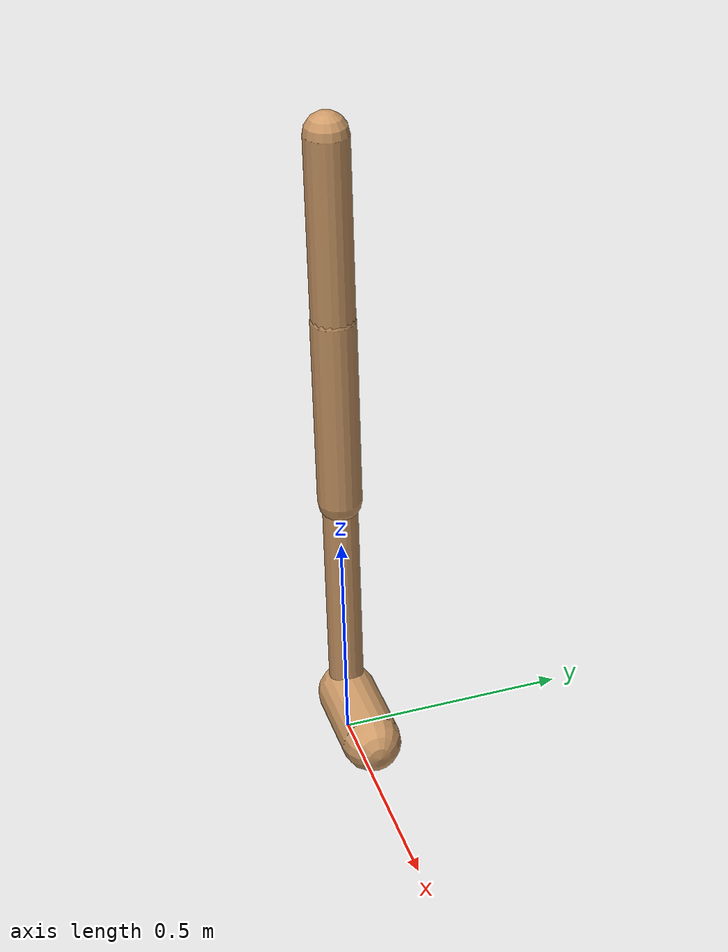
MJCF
<mujoco model="walker2d">
  <compiler angle="degree" coordinate="global" inertiafromgeom="true" />
  <default>
    <joint armature="0.01" damping=".1" limited="true" />
    <geom conaffinity="0" condim="3" contype="1" density="1000" friction="0.8 .1 .1" rgba="0.8 0.6 .4 1" />
  </default>
  <option integrator="RK4" timestep="0.002" />
  <worldbody>

    <body name="torso" pos="0 0 -0.03904116544244765">
      <joint armature="0" axis="1 0 0" damping="0" limited="false" name="ignorex" pos="0 0 0" stiffness="0" type="slide" />
      <joint armature="0" axis="0 0 1" damping="0" limited="false" name="ignorez" pos="0 0 0" ref="1.25" stiffness="0" type="slide" />
      <joint armature="0" axis="0 1 0" damping="0" limited="false" name="ignorey" pos="0 0 0" stiffness="0" type="hinge" />
      <geom fromto="0 0 1.45 0 0 1.05" name="torso_geom" size="0.04614452695073079" type="capsule" />
      <body name="thigh">
        <joint axis="0 -1 0" name="thigh_joint" pos="0 0 1.05" range="-150 0" type="hinge" />
        <geom fromto="0.0 0.0 1.05 0.0 0.0 0.6184931836306331" name="thigh_geom" size="0.04760179907094713" type="capsule" />
        <body name="leg" pos="0.0 0.0 0.018493183630633125">
          <joint axis="0 -1 0" name="leg_joint" pos="0 0 0.6" range="-150 0" type="hinge" />
          <geom fromto="0.0 0.0 0.6 0.0 0.0 0.12054798181181456" name="leg_geom" size="0.0380814392567577" type="capsule" />
          <body name="foot" pos="0.0 0.0 0.020547981811814553">
            <joint axis="0 -1 0" name="foot_joint" pos="0 0 0.1" range="-45 45" type="hinge" />
            <geom fromto="0.0 0.0 0.1 0.18496816291880777 0.0 0.1" name="foot_geom" size="0.06467161920258137" type="capsule" />
          </body>
        </body>
      </body>

      <body name="thigh_left">
        <joint axis="0 -1 0" name="thigh_left_joint" pos="0 0 1.05" range="-150 0" type="hinge" />
        <geom fromto="0.0 0.0 1.05 0.0 0.0 0.6184931836306331" name="thigh_left_geom" rgba=".7 .3 .6 1" size="0.04760179907094713" type="capsule" />
        <body name="leg_left" pos="0.0 0.0 0.018493183630633125">
          <joint axis="0 -1 0" name="leg_left_joint" pos="0 0 0.6" range="-150 0" type="hinge" />
          <geom fromto="0.0 0.0 0.6 0.0 0.0 0.12054798181181456" name="leg_left_geom" rgba=".7 .3 .6 1" size="0.0380814392567577" type="capsule" />
          <body name="foot_left" pos="0.0 0.0 0.020547981811814553">
            <joint axis="0 -1 0" name="foot_left_joint" pos="0 0 0.1" range="-45 45" type="hinge" />
            <geom fromto="0.0 0.0 0.1 0.18496816291880777 0.0 0.1" name="foot_left_geom" rgba=".7 .3 .6 1" size="0.06467161920258137" type="capsule" />
          </body>
        </body>
      </body>
    </body>
  </worldbody>
  <actuator>

    <motor ctrllimited="true" ctrlrange="-1.0 1.0" gear="100" joint="thigh_joint" />
    <motor ctrllimited="true" ctrlrange="-1.0 1.0" gear="100" joint="leg_joint" />
    <motor ctrllimited="true" ctrlrange="-1.0 1.0" gear="100" joint="foot_joint" />
    <motor ctrllimited="true" ctrlrange="-1.0 1.0" gear="100" joint="thigh_left_joint" />
    <motor ctrllimited="true" ctrlrange="-1.0 1.0" gear="100" joint="leg_left_joint" />
    <motor ctrllimited="true" ctrlrange="-1.0 1.0" gear="100" joint="foot_left_joint" />

  </actuator>
</mujoco>
